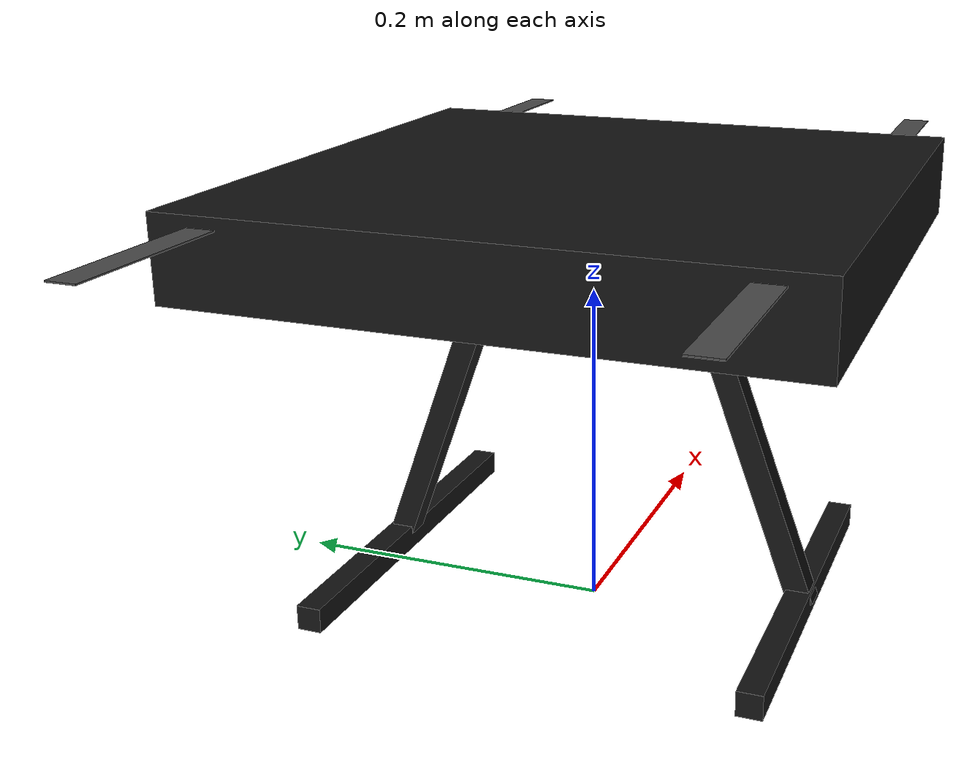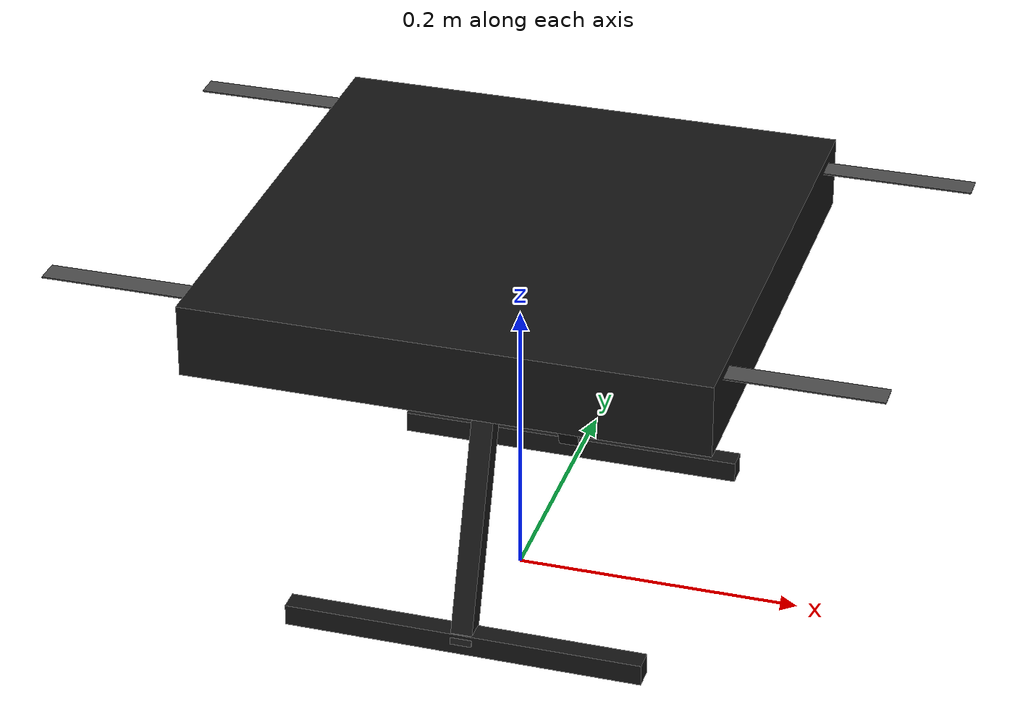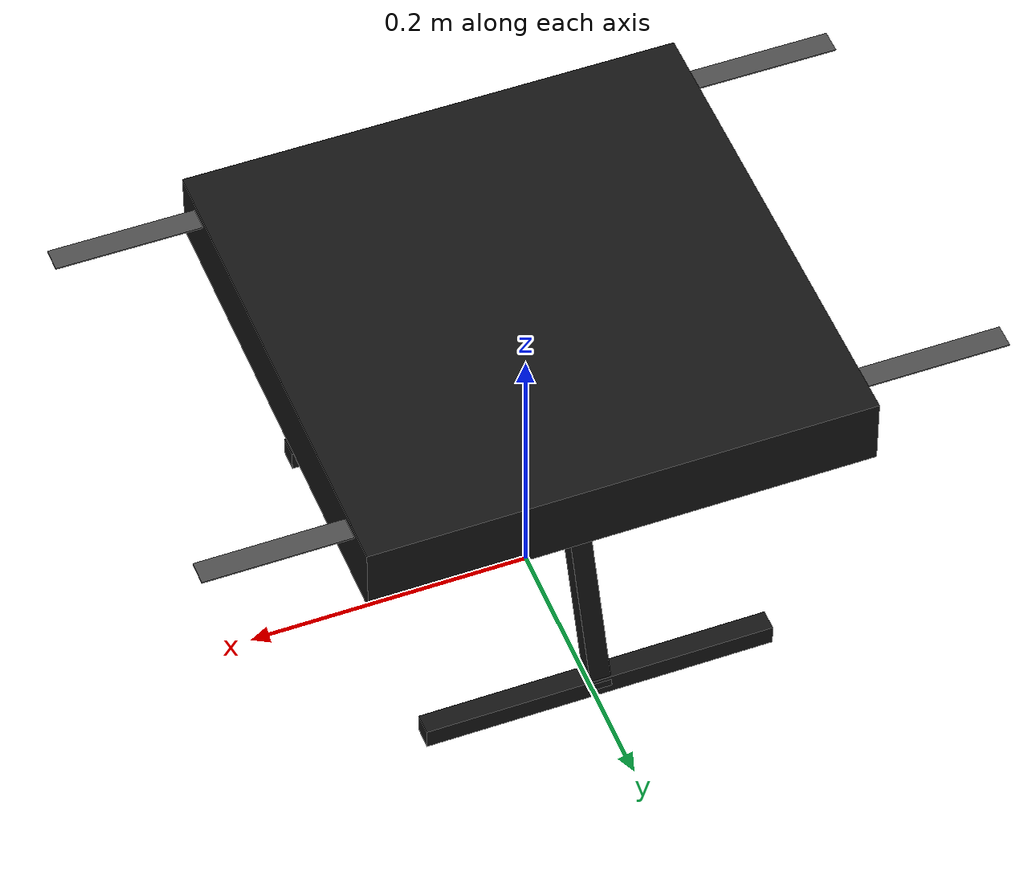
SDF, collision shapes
<?xml version="1.0" encoding="UTF-8"?>
<sdf version='1.9'>
  <model name='x500_base'>
    <pose>0 0 .24 0 0 0</pose>
    <self_collide>false</self_collide>
    <static>false</static>
    <link name="base_link">
      <inertial>
        <mass>1.521095</mass>
        <inertia>
          <ixx>0.022</ixx>
          <ixy>4.107e-016</ixy>
          <ixz>2.602e-009</ixz>
          <iyy>0.022</iyy>
          <iyz>3.991e-010</iyz>
          <izz>0.023</izz>
        </inertia>
      </inertial>
      <gravity>true</gravity>
      <enable_wind>true</enable_wind>
      <velocity_decay/>
      <visual name="base_link_visual">
        <pose>0 0 0 0 0 0.785398</pose>
        <geometry>
          <mesh>
            <scale>0.001 0.001 0.001</scale>
            <uri>model://x500_base/meshes/drone_body_1.stl</uri>
          </mesh>
        </geometry>
        <material>
          <ambient>0.03 0.03 0.03 1</ambient>
          <diffuse>0.08 0.08 0.08 1</diffuse>
          <specular>0.01 0.01 0.01 1</specular>
        </material>
      </visual>
      <visual name="NXP_FMUK66_FRONT">
        <pose>0.047 .001 .043 1 0 1.57</pose>
        <cast_shadows>false</cast_shadows>
        <geometry>
          <plane>
            <normal>0 0 1</normal>
            <size>.013 .007</size>
          </plane>
        </geometry>
        <material>
          <diffuse>1.0 1.0 1.0</diffuse>
          <specular>1.0 1.0 1.0</specular>
          <pbr>
            <metal>
              <albedo_map>model://x500_base/materials/textures/nxp.png</albedo_map>
            </metal>
          </pbr>
        </material>
      </visual>
      <visual name="NXP_FMUK66_TOP">
        <pose>-0.023 0 .0515 0 0 -1.57</pose>
        <cast_shadows>false</cast_shadows>
        <geometry>
          <plane>
            <normal>0 0 1</normal>
            <size>.013 .007</size>
          </plane>
        </geometry>
        <material>
          <diffuse>1.0 1.0 1.0</diffuse>
          <specular>1.0 1.0 1.0</specular>
          <pbr>
            <metal>
              <albedo_map>model://x500_base/materials/textures/nxp.png</albedo_map>
            </metal>
          </pbr>
        </material>
      </visual>
      <visual name="RDDRONE_FMUK66_TOP">
        <pose>-.03 0 .0515 0 0 -1.57</pose>
        <cast_shadows>false</cast_shadows>
        <geometry>
          <plane>
            <normal>0 0 1</normal>
            <size>.032 .0034</size>
          </plane>
        </geometry>
        <material>
          <diffuse>1.0 1.0 1.0</diffuse>
          <specular>1.0 1.0 1.0</specular>
          <pbr>
            <metal>
              <albedo_map>model://x500_base/materials/textures/rd.png</albedo_map>
            </metal>
          </pbr>
        </material>
      </visual>
      <collision name="base_link_collision_0">
        <pose>0 0 .007 0 0 0</pose>
        <geometry>
          <box>
            <size>0.35355339059327373 0.35355339059327373 0.05</size>
          </box>
        </geometry>
        <surface>
          <contact>
            <ode>
              <min_depth>0.001</min_depth>
              <max_vel>0</max_vel>
            </ode>
          </contact>
          <friction>
            <ode/>
          </friction>
        </surface>
      </collision>
      <collision name="base_link_collision_1">
        <pose>0 -0.098 -.123 -0.35 0 0</pose>
        <geometry>
          <box>
            <size>0.015 0.015 0.21</size>
          </box>
        </geometry>
        <surface>
          <contact>
            <ode>
              <min_depth>0.001</min_depth>
              <max_vel>0</max_vel>
            </ode>
          </contact>
          <friction>
            <ode/>
          </friction>
        </surface>
      </collision>
      <collision name="base_link_collision_2">
        <pose>0 0.098 -.123 0.35 0 0</pose>
        <geometry>
          <box>
            <size>0.015 0.015 0.21</size>
          </box>
        </geometry>
        <surface>
          <contact>
            <ode>
              <min_depth>0.001</min_depth>
              <max_vel>0</max_vel>
            </ode>
          </contact>
          <friction>
            <ode/>
          </friction>
        </surface>
      </collision>
      <collision name="base_link_collision_3">
        <pose>0 -0.132 -.2195 0 0 0</pose>
        <geometry>
          <box>
            <size>0.25 0.015 0.015</size>
          </box>
        </geometry>
        <surface>
          <contact>
            <ode>
              <min_depth>0.001</min_depth>
              <max_vel>0</max_vel>
            </ode>
          </contact>
          <friction>
            <ode/>
          </friction>
        </surface>
      </collision>
      <collision name="base_link_collision_4">
        <pose>0 0.132 -.2195 0 0 0</pose>
        <geometry>
          <box>
            <size>0.25 0.015 0.015</size>
          </box>
        </geometry>
        <surface>
          <contact>
            <ode>
              <min_depth>0.001</min_depth>
              <max_vel>0</max_vel>
            </ode>
          </contact>
          <friction>
            <ode/>
          </friction>
        </surface>
      </collision>
      <sensor name="air_pressure_sensor" type="air_pressure">
        <always_on>1</always_on>
        <update_rate>50</update_rate>
        <air_pressure>
          <!-- Noise modeled after BMP390 -->
          <pressure>
            <noise type="gaussian">
              <mean>0</mean>
              <stddev>3</stddev>
            </noise>
          </pressure>
        </air_pressure>
      </sensor>
      <sensor name="magnetometer_sensor" type="magnetometer">
        <always_on>1</always_on>
        <update_rate>100</update_rate>
        <magnetometer>
          <!-- TODO: update to fix units and coordinate system when we move past Harmonic -->
          <!-- See https://github.com/gazebosim/gz-sim/pull/2460 -->
          <!-- 3mgauss RMS: NOTE: noise is in tesla but sensor reports data in gauss -->
          <!-- Noise modeled after IIS2MDC -->
          <x>
            <noise type="gaussian">
              <stddev>0.0001</stddev>
            </noise>
          </x>
          <y>
            <noise type="gaussian">
              <stddev>0.0001</stddev>
            </noise>
          </y>
          <z>
            <noise type="gaussian">
              <stddev>0.0001</stddev>
            </noise>
          </z>
        </magnetometer>
      </sensor>
      <sensor name="imu_sensor" type="imu">
        <always_on>1</always_on>
        <update_rate>250</update_rate>
        <imu>
          <angular_velocity>
            <!-- Noise modeled after IIM42653 -->
            <!-- 0.05 deg/s converted to rad/s -->
            <x>
              <noise type="gaussian">
                <mean>0.0</mean>
                <stddev>0.0008726646</stddev>
              </noise>
            </x>
            <y>
              <noise type="gaussian">
                <mean>0.0</mean>
                <stddev>0.0008726646</stddev>
              </noise>
            </y>
            <z>
              <noise type="gaussian">
                <mean>0.0</mean>
                <stddev>0.0008726646</stddev>
              </noise>
            </z>
          </angular_velocity>
          <linear_acceleration>
            <!-- Noise modeled after IIM42653 -->
            <!-- X & Y axis: 0.65 mg-rms converted to m/ss -->
            <x>
              <noise type="gaussian">
                <mean>0.0</mean>
                <stddev>0.00637</stddev>
              </noise>
            </x>
            <y>
              <noise type="gaussian">
                <mean>0.0</mean>
                <stddev>0.00637</stddev>
              </noise>
            </y>
            <!-- Z axis: 0.70 mg-rms converted to m/ss-->
            <z>
              <noise type="gaussian">
                <mean>0.0</mean>
                <stddev>0.00686</stddev>
              </noise>
            </z>
          </linear_acceleration>
        </imu>
      </sensor>
      <sensor name="navsat_sensor" type="navsat">
        <always_on>1</always_on>
        <update_rate>30</update_rate>
      </sensor>

      <!-- ROCKET_DRONE_UPWARD_CAMERA -->
      <!--
        Rocket Drone global-shutter camera simulation
        Optical specification matched to team mono_cam.
        Mounting angle remains 35 deg upward for interceptor mission.
      -->
      <sensor name="imager" type="camera">

        <update_rate>30</update_rate>

        <!--
          Position relative to base_link
          x = front
          y = center
          z = upper side
          pitch = -35 deg (upward looking)
        -->
        <pose>0.18 0 0.12 0 -0.6109 0</pose>

        <camera>
          <!-- Team mono_cam HFOV: 1.74 rad (~99.7 deg) -->
          <horizontal_fov>1.74</horizontal_fov>

          <image>
            <width>1280</width>
            <height>960</height>
            <format>R8G8B8</format>
          </image>

          <clip>
            <near>0.1</near>
            <far>3000</far>
          </clip>
        </camera>

        <always_on>true</always_on>
        <visualize>true</visualize>

        <!-- Keep current topic during integration -->
        <topic>/rocket_drone/camera/image</topic>

      </sensor>
    </link>
    <link name="rotor_0">
      <gravity>true</gravity>
      <enable_wind>true</enable_wind>
      <self_collide>false</self_collide>
      <velocity_decay/>
      <pose>0.14 -0.145 0.025 0 0 0</pose>
      <inertial>
          <mass>0.016076923076923075</mass>
          <inertia>
            <ixx>3.8464910483993325e-07</ixx>
            <iyy>2.6115851691700804e-05</iyy>
            <izz>2.649858234714004e-05</izz>
          </inertia>
        </inertial>
      <visual name="rotor_0_visual">
        <pose>0.003 0 -0.03 0 0 0</pose>
        <geometry>
          <mesh>
            <scale>1 1 1</scale>
            <uri>model://x500_base/meshes/ccw.stl</uri>
          </mesh>
        </geometry>
        <material>
          <script>
            <name>Gazebo/DarkGrey</name>
            <uri>file://media/materials/scripts/gazebo.material</uri>
          </script>
        </material>
      </visual>
      <collision name="rotor_0_collision">
        <pose>0 0 0 0 0 0 </pose>
        <geometry>
          <box>
            <size>0.2792307692307692 0.016923076923076923 0.0008461538461538462</size>
          </box>
        </geometry>
        <surface>
          <contact>
            <ode>
              <min_depth>0.001</min_depth>
              <max_vel>0</max_vel>
            </ode>
          </contact>
          <friction>
            <ode/>
          </friction>
        </surface>
      </collision>
    </link>
    <joint name="rotor_0_joint" type="revolute">
      <parent>base_link</parent>
      <child>rotor_0</child>
      <axis>
        <xyz>0 0 1</xyz>
        <limit>
          <lower>-1e+16</lower>
          <upper>1e+16</upper>
        </limit>
        <dynamics>
          <spring_reference>0</spring_reference>
          <spring_stiffness>0</spring_stiffness>
        </dynamics>
      </axis>
    </joint>
    <link name="rotor_1">
      <gravity>true</gravity>
      <enable_wind>true</enable_wind>
      <self_collide>false</self_collide>
      <velocity_decay/>
      <pose>-0.14 0.145 0.025 0 0 0</pose>
      <inertial>
          <mass>0.016076923076923075</mass>
          <inertia>
            <ixx>3.8464910483993325e-07</ixx>
            <iyy>2.6115851691700804e-05</iyy>
            <izz>2.649858234714004e-05</izz>
          </inertia>
        </inertial>
      <visual name="rotor_1_visual">
        <pose>-0.003 0 -0.03 0 0 0</pose>
        <geometry>
          <mesh>
            <scale>1 1 1</scale>
            <uri>model://x500_base/meshes/ccw.stl</uri>
          </mesh>
        </geometry>
        <material>
          <script>
            <name>Gazebo/DarkGrey</name>
            <uri>file://media/materials/scripts/gazebo.material</uri>
          </script>
        </material>
      </visual>
      <collision name="rotor_1_collision">
        <pose>0 0 0 0 0 0 </pose>
        <geometry>
          <box>
            <size>0.2792307692307692 0.016923076923076923 0.0008461538461538462</size>
          </box>
        </geometry>
        <surface>
          <contact>
            <ode>
              <min_depth>0.001</min_depth>
              <max_vel>0</max_vel>
            </ode>
          </contact>
          <friction>
            <ode/>
          </friction>
        </surface>
      </collision>
    </link>
    <joint name="rotor_1_joint" type="revolute">
      <parent>base_link</parent>
      <child>rotor_1</child>
      <axis>
        <xyz>0 0 1</xyz>
        <limit>
          <lower>-1e+16</lower>
          <upper>1e+16</upper>
        </limit>
        <dynamics>
          <spring_reference>0</spring_reference>
          <spring_stiffness>0</spring_stiffness>
        </dynamics>
      </axis>
    </joint>
    <link name="rotor_2">
      <gravity>true</gravity>
      <enable_wind>true</enable_wind>
      <self_collide>false</self_collide>
      <velocity_decay/>
      <pose>0.14 0.145 0.025 0 0 0</pose>
      <inertial>
          <mass>0.016076923076923075</mass>
          <inertia>
            <ixx>3.8464910483993325e-07</ixx>
            <iyy>2.6115851691700804e-05</iyy>
            <izz>2.649858234714004e-05</izz>
          </inertia>
        </inertial>
      <visual name="rotor_2_visual">
        <pose>0.003 0 -0.03 0 0 0</pose>
        <geometry>
          <mesh>
            <scale>1 1 1</scale>
            <uri>model://x500_base/meshes/cw.stl</uri>
          </mesh>
        </geometry>
        <material>
          <script>
            <name>Gazebo/DarkGrey</name>
            <uri>file://media/materials/scripts/gazebo.material</uri>
          </script>
        </material>
      </visual>
      <collision name="rotor_2_collision">
        <pose>0 0 0 0 0 0 </pose>
        <geometry>
          <box>
            <size>0.2792307692307692 0.016923076923076923 0.0008461538461538462</size>
          </box>
        </geometry>
        <surface>
          <contact>
            <ode>
              <min_depth>0.001</min_depth>
              <max_vel>0</max_vel>
            </ode>
          </contact>
          <friction>
            <ode/>
          </friction>
        </surface>
      </collision>
    </link>
    <joint name="rotor_2_joint" type="revolute">
      <parent>base_link</parent>
      <child>rotor_2</child>
      <axis>
        <xyz>0 0 1</xyz>
        <limit>
          <lower>-1e+16</lower>
          <upper>1e+16</upper>
        </limit>
        <dynamics>
          <spring_reference>0</spring_reference>
          <spring_stiffness>0</spring_stiffness>
        </dynamics>
      </axis>
    </joint>
    <link name="rotor_3">
      <gravity>true</gravity>
      <enable_wind>true</enable_wind>
      <self_collide>false</self_collide>
      <velocity_decay/>
      <pose>-0.14 -0.145 0.025 0 0 0</pose>
      <inertial>
          <mass>0.016076923076923075</mass>
          <inertia>
            <ixx>3.8464910483993325e-07</ixx>
            <iyy>2.6115851691700804e-05</iyy>
            <izz>2.649858234714004e-05</izz>
          </inertia>
        </inertial>
      <visual name="rotor_3_visual">
        <pose>-0.003 0 -0.03 0 0 0</pose>
        <geometry>
          <mesh>
            <scale>1 1 1</scale>
            <uri>model://x500_base/meshes/cw.stl</uri>
          </mesh>
        </geometry>
        <material>
          <script>
            <name>Gazebo/DarkGrey</name>
            <uri>file://media/materials/scripts/gazebo.material</uri>
          </script>
        </material>
      </visual>
      <collision name="rotor_3_collision">
        <pose>0 0 0 0 0 0 </pose>
        <geometry>
          <box>
            <size>0.2792307692307692 0.016923076923076923 0.0008461538461538462</size>
          </box>
        </geometry>
        <surface>
          <contact>
            <ode>
              <min_depth>0.001</min_depth>
              <max_vel>0</max_vel>
            </ode>
          </contact>
          <friction>
            <ode/>
          </friction>
        </surface>
      </collision>
    </link>
    <joint name="rotor_3_joint" type="revolute">
      <parent>base_link</parent>
      <child>rotor_3</child>
      <axis>
        <xyz>0 0 1</xyz>
        <limit>
          <lower>-1e+16</lower>
          <upper>1e+16</upper>
        </limit>
        <dynamics>
          <spring_reference>0</spring_reference>
          <spring_stiffness>0</spring_stiffness>
        </dynamics>
      </axis>
    </joint>

    <!-- ROCKET_DRONE_AERODYNAMIC_MODEL -->
    <!-- 1차 검증 모델: X축 전진 시 동체 항력 -->
    <plugin
      filename="gz-sim-advanced-lift-drag-system"
      name="gz::sim::systems::AdvancedLiftDrag">

      <!-- 공력이 작용할 기체 링크 -->
      <link_name>base_link</link_name>

      <!-- 해수면 표준 공기밀도 [kg/m^3] -->
      <rho>1.225</rho>

      <!-- 호버 자세에서 X축 진행 방향 투영면적 [m^2] -->
      <area>0.05890</area>

      <!-- base_link 기준 전방축과 상방축 -->
      <forward>1 0 0</forward>
      <upward>0 0 1</upward>

      <!-- 공력 작용점 [m] -->
      <!-- 1차 시험에서는 CG와 가깝게 설정하여 불필요한 모멘트 억제 -->
      <cp>0 0 0.027097</cp>

      <!-- 기본 공력계수 -->
      <CL0>0.0</CL0>
      <CD0>0.186</CD0>
      <Cem0>0.0</Cem0>

      <!-- 받음각 및 옆미끄럼각 계수 -->
      <CLa>1.89</CLa>
      <CYa>0.0</CYa>
      <Cella>0.0</Cella>
      <Cema>0.0</Cema>
      <Cena>0.0</Cena>

      <CLb>0.0</CLb>
      <CYb>0.0</CYb>
      <Cellb>0.0</Cellb>
      <Cemb>0.0</Cemb>
      <Cenb>0.0</Cenb>

      <!-- 회전 운동에 따른 공력 미분계수 -->
      <CDp>0.0</CDp>
      <CYp>0.0</CYp>
      <CLp>0.0</CLp>
      <Cellp>0.0</Cellp>
      <Cenp>0.0</Cenp>

      <CDq>0.0</CDq>
      <CYq>0.0</CYq>
      <CLq>0.0</CLq>
      <Cellq>0.0</Cellq>
      <Cemq>0.0</Cemq>
      <Cenq>0.0</Cenq>

      <CDr>0.0</CDr>
      <CYr>0.0</CYr>
      <CLr>0.0</CLr>
      <Cellr>0.0</Cellr>
      <Cemr>0.0</Cemr>
      <Cenr>0.0</Cenr>

      <!-- 기준 형상 -->
      <AR>1.0</AR>
      <mac>0.427817</mac>
      <eff>1.0</eff>

      <!-- 스톨 관련 값: 1차 항력 시험에서는 사실상 비활성 -->
      <alphaStall>1.5708</alphaStall>
      <CemaStall>0.0</CemaStall>

    </plugin>

  </model>
</sdf>
